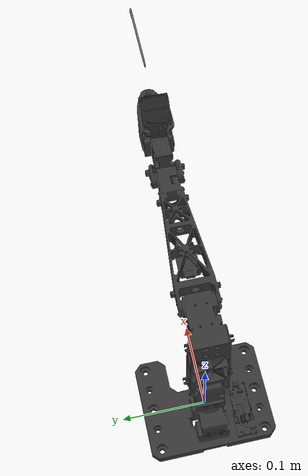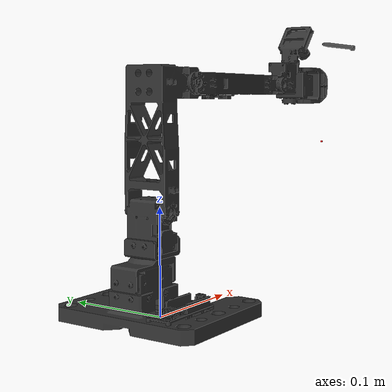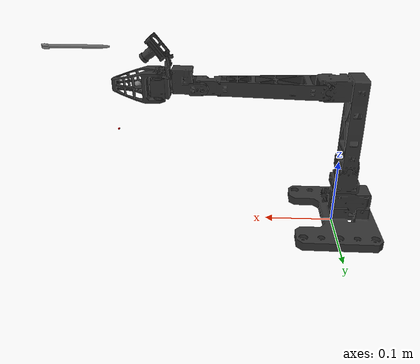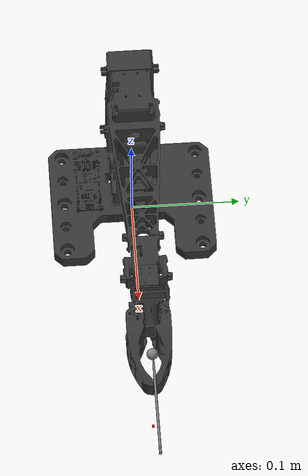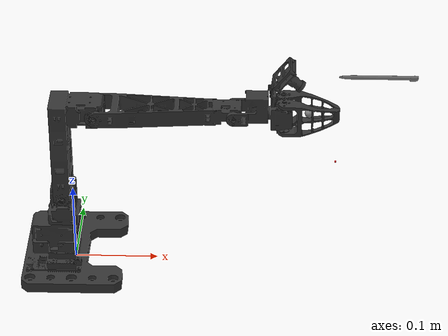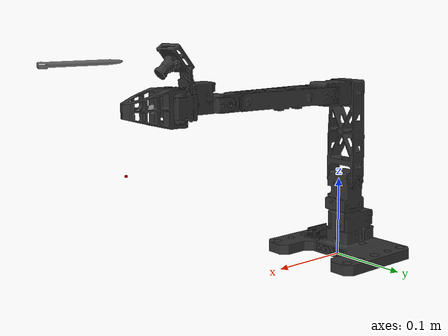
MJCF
<mujoco model="omx_f_drawing">
  <compiler angle="radian" meshdir="." autolimits="true"/>

  <option integrator="implicitfast"/>

  <default>
    <joint armature="0.1" damping="10.0"/>
    <position kp="1000" kv="200" forcerange="-100 100"/>
  </default>

  <asset>
    <mesh name="follower_01_base" content_type="model/stl" file="urdf/omx_f/follower_01_base.stl" scale="0.001 0.001 0.001"/>
    <mesh name="follower_02_base_tilt_Revised" content_type="model/stl" file="urdf/omx_f/follower_02_base_tilt_Revised.stl" scale="0.001 0.001 0.001"/>
    <mesh name="follower_03_middle_verticle" content_type="model/stl" file="urdf/omx_f/follower_03_middle_verticle.stl" scale="0.001 0.001 0.001"/>
    <mesh name="follower_04_middle_horizontal" content_type="model/stl" file="urdf/omx_f/follower_04_middle_horizontal.stl" scale="0.001 0.001 0.001"/>
    <mesh name="follower_05_tip" content_type="model/stl" file="urdf/omx_f/follower_05_tip.stl" scale="0.001 0.001 0.001"/>
    <mesh name="follower_06_pan_Revised" content_type="model/stl" file="urdf/omx_f/follower_06_pan_Revised.stl" scale="0.001 0.001 0.001"/>
    <mesh name="follower_07_gripper_motorized" content_type="model/stl" file="urdf/omx_f/follower_07_gripper_motorized.stl" scale="0.001 0.001 0.001"/>
    <mesh name="follower_08_gripper_gear" content_type="model/stl" file="urdf/omx_f/follower_08_gripper_gear.stl" scale="0.001 0.001 0.001"/>
    <mesh name="pen" file="touch_pen.stl" scale="0.001 0.00044444 0.00105936"/>
  </asset>

  <worldbody>
    <geom type="mesh" rgba="0.2 0.2 0.2 1" mesh="follower_01_base"/>
    <body name="link1" pos="-0.01125 0 0.034">
      <inertial pos="-6.22362e-06 0.000604923 0.0474188" quat="0.999751 -0.0195068 -0.000523577 -0.0108265" mass="0.065987" diaginertia="2.17318e-05 2.13661e-05 1.16432e-05"/>
      <joint name="joint1" pos="0 0 0" axis="0 0 1" range="-3.14159 3.14159"/>
      <geom type="mesh" rgba="0.2 0.2 0.2 1" mesh="follower_02_base_tilt_Revised"/>
      <body name="link2" pos="0 0 0.0635">
        <inertial pos="0.0180899 0.000297788 0.0990055" quat="0.687559 0.105106 0.119393 0.708492" mass="0.0872215" diaginertia="0.000120923 0.000110522 3.4491e-05"/>
        <joint name="joint2" pos="0 0 0" axis="0 1 0" range="-1.5 1.5"/>
        <geom type="mesh" rgba="0.2 0.2 0.2 1" mesh="follower_03_middle_verticle"/>
        <body name="link3" pos="0.0415 0 0.11315">
          <inertial pos="0.0873986 0.000413101 -0.00358292" quat="0.0308724 0.692831 0.0315908 0.719746" mass="0.0837591" diaginertia="0.000231019 0.000226024 1.48898e-05"/>
          <joint name="joint3" pos="0 0 0" axis="0 1 0" range="-1.5 1.4"/>
          <geom type="mesh" rgba="0.2 0.2 0.2 1" mesh="follower_04_middle_horizontal"/>
          <body name="link4" pos="0.162 0 0">
            <inertial pos="0.023235 6.77354e-05 0.00597613" quat="0.608881 0.373182 0.376257 0.590279" mass="0.0299751" diaginertia="7.09955e-06 6.69023e-06 4.72073e-06"/>
            <joint name="joint4" pos="0 0 0" axis="0 1 0" range="-1.7 1.97"/>
            <geom type="mesh" rgba="0.2 0.2 0.2 1" mesh="follower_05_tip"/>
            <body name="link5" pos="0.0287 0 0">
              <inertial pos="0.0280724 2.41359e-05 0.0135289" quat="0.996143 0.000396881 0.0854137 -0.0200656" mass="0.0438109" diaginertia="2.42036e-05 2.32357e-05 6.67277e-06"/>
              <joint name="joint5" pos="0 0 0" axis="1 0 0" range="-1.5708 1.5708"/>
              <geom type="mesh" rgba="0.2 0.2 0.2 1" mesh="follower_06_pan_Revised"/>
              <site name="link5_site" pos="0.0590 0 0.0"/>

              <!-- Pen attached to end effector -->
              <body name="obj_pen" pos="0.09193 -0.0016 0.05" euler="0 0 0">
                <geom type="mesh" pos="0 0 0" euler="3.14159 0 0" mesh="pen"/>
                <inertial pos="0 0 0" mass="0.1" diaginertia="0.01 0.01 0.01" />
                <body name="end_effector_target" pos="0 0 -0.116">
                  <geom type="box" pos="0 0 0" size="0.001 0.001 0.001" rgba="1 0 0 1" contype="0" conaffinity="0"/>
                  <inertial pos="0 0 0" mass="0.01" diaginertia="0.01 0.01 0.01" />
                </body>
              </body>

              <!-- Gripper links -->
              <body name="link6" pos="0.0295 0.0075 0">
                <inertial pos="0.0161646 0.0012731 0.000272916" quat="0.498852 0.517636 0.496678 0.486324" mass="0.0120907" diaginertia="6.87819e-06 4.69576e-06 2.70194e-06"/>
                <joint name="gripper_joint_1" pos="0 0 0" axis="0 0 1" range="-0.5 0.5"/>
                <geom type="mesh" rgba="0.2 0.2 0.2 1" mesh="follower_07_gripper_motorized"/>
              </body>
              <body name="link7" pos="0.0295 -0.0108 0">
                <inertial pos="0.0161646 0.0012731 0.000272916" quat="0.498852 0.517636 0.496678 0.486324" mass="0.0120907" diaginertia="6.87819e-06 4.69576e-06 2.70194e-06"/>
                <joint name="gripper_joint_2" pos="0 0 0" axis="0 0 1" range="-0.5 0.5"/>
                <geom type="mesh" rgba="0.2 0.2 0.2 1" mesh="follower_08_gripper_gear"/>
              </body>
            </body>
          </body>
        </body>
      </body>
    </body>
  </worldbody>

  <!-- Exclude contact information -->
  <contact>
    <exclude body1="world" body2="link1"/>
  </contact>

  <!-- Define actuators -->
  <actuator>
    <position name="actuator_joint1" joint="joint1" ctrlrange="-3.142 3.142"/>
    <position name="actuator_joint2" joint="joint2" ctrlrange="-1.5 1.5"/>
    <position name="actuator_joint3" joint="joint3" ctrlrange="-1.5 1.4"/>
    <position name="actuator_joint4" joint="joint4" ctrlrange="-1.7 1.97"/>
    <position name="actuator_joint5" joint="joint5" ctrlrange="-1.5708 1.5708"/>
    <position name="actuator_gripper_joint" joint="gripper_joint_1" ctrlrange="-0.5 0.5"/>
  </actuator>

  <!-- Gripper mimic constraint -->
  <equality>
    <joint name="equality_gripper" active="true" joint1="gripper_joint_1" joint2="gripper_joint_2" polycoef="0 -1 0 0 0"/>
  </equality>
</mujoco>
